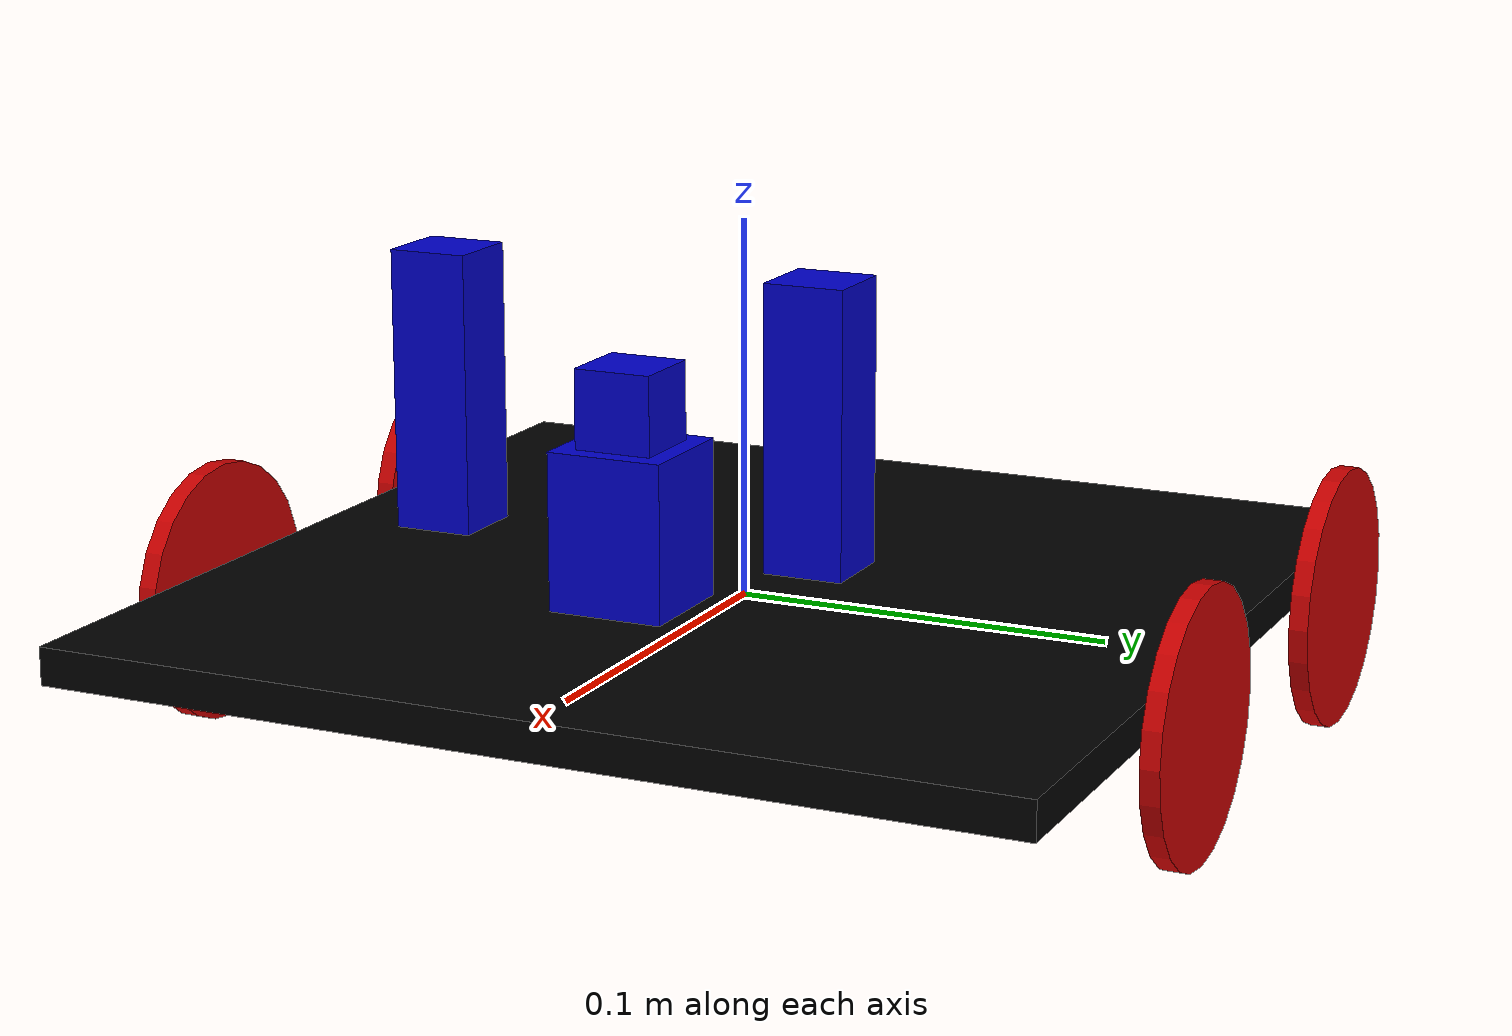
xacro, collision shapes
<?xml version="1.0"?>
<robot xmlns:xacro="http://www.ros.org/wiki/xacro" name="mobile_robot">

  <xacro:property name="base_width" value="0.26"/>
  <xacro:property name="base_len" value="0.26"/>
  <xacro:property name="wheel_radius" value="0.035"/>
  <xacro:property name="base_wheel_gap" value="0.007"/>
  <xacro:property name="wheel_separation" value="0.15"/>
  <xacro:property name="wheel_joint_offset" value="0.04"/>
  <xacro:property name="wheel_joint_offset1" value="-0.08"/>

  <xacro:property name="caster_wheel_radius" value="${wheel_radius/2}"/>
  <xacro:property name="caster_wheel_mass" value="0.001"/>
  <xacro:property name="caster_wheel_joint_offset" value="-0.052"/>

  <xacro:property name="camera_size" value="0.02"/>
  <xacro:property name="camera_origin_x" value="0.065"/>
  <xacro:property name="camera_origin_y" value="0"/>
  <xacro:property name="camera_origin_z" value="0.065"/>

  <xacro:property name="deg_to_rad" value="0.01745329251994329577"/>

  <xacro:property name="M_PI" value="3.14159"/>

  <xacro:include filename="$(find mobile_description)/urdf/sensors/xtion_pro_live.urdf.xacro"/>

  <xacro:include filename="$(find mobile_description)/urdf/mobile_robot_gazebo_plugins.xacro"/>

  <!--Color Properties-->
  <material name="blue">
    <color rgba="0 0 0.8 1"/>
  </material>
  <material name="black">
    <color rgba="0 0 0 1"/>
  </material>
  <material name="white">
    <color rgba="1 1 1 1"/>
  </material>
  <material name="red">
    <color rgba="0.8 0.0 0.0 1.0"/>
  </material>

  <!--Interial macros-->
  <xacro:macro name="cylinder_inertia" params="m r h">
    <inertial>
      <mass value="${m}"/>
      <inertia ixx="${m*(3*r*r+h*h)/12}" ixy = "0" ixz = "0" iyy="${m*(3*r*r+h*h)/12}" iyz = "0" izz="${m*r*r/2}"/>
    </inertial>
  </xacro:macro>

  <xacro:macro name="box_inertia" params="m w h d">
    <inertial>
      <mass value="${m}"/>
      <inertia ixx="${m / 12.0 * (d*d + h*h)}" ixy="0.0" ixz="0.0" iyy="${m / 12.0 * (w*w + h*h)}" iyz="0.0" izz="${m / 12.0 * (w*w + d*d)}"/>
    </inertial>
  </xacro:macro>

  <xacro:macro name="sphere_inertia" params="m r">
    <inertial>
      <mass value="${m}"/>
      <inertia ixx="${2.0*m*(r*r)/5.0}" ixy="0.0" ixz="0.0" iyy="${2.0*m*(r*r)/5.0}" iyz="0.0" izz="${2.0*m*(r*r)/5.0}"/>
    </inertial>
  </xacro:macro>

  <xacro:macro name="default_inertial" params="mass">
    <inertial>
      <mass value="${mass}"/>
      <inertia ixx="1.0" ixy="0.0" ixz="0.0" iyy="1.0" iyz="0.0" izz="1.0"/>
    </inertial>
  </xacro:macro>
  <!--Base Footprint-->

  <!--Base link-->
  <link name="base_link">
    <xacro:box_inertia m="10" w="${base_len}" h="${base_width}" d="0.01"/>
    <visual>
      <geometry>
        <box size="${base_len} ${base_width} 0.05"/>
      </geometry>
      <material name="black"/>
    </visual>
    <collision>
      <geometry>
        <box size="${base_len} ${base_width} 0.01"/>
      </geometry>
    </collision>
  </link>

  <!--base_link to base_footprint Joint-->

  <!--Wheel link1 & joint macro-->
  <xacro:macro name="wheel" params="prefix reflect">
    <link name="${prefix}_wheel">
      <visual>
        <origin xyz="0.0 0 0" rpy="${pi/2} 0 0"/>
        <geometry>
          <cylinder radius="${wheel_radius}" length="0.005"/>
        </geometry>
        <material name="red"/>
      </visual>
      <collision>
        <origin xyz="0 0 0" rpy="${pi/2} 0 0"/>
        <geometry>
          <cylinder radius="${wheel_radius}" length="0.005"/>
        </geometry>
      </collision>
      <xacro:cylinder_inertia m="10" r="${wheel_radius}" h="0.005"/>
    </link>

    <joint name="${prefix}_wheel_joint" type="continuous">
      <axis xyz="0 1 0" rpy="0 0 0" />
      <parent link="base_link"/>
      <child link="${prefix}_wheel"/>
      <origin xyz="${wheel_joint_offset} ${((base_width/2)+base_wheel_gap)*reflect} -0.005" rpy="0 0 0"/>
    </joint>
  </xacro:macro>

  <!--Wheel link2 & joint macro-->
  <xacro:macro name="wheel1" params="prefix reflect">
    <link name="${prefix}_wheel">
      <visual>
        <origin xyz="0 0 0" rpy="${pi/2} 0 0"/>
        <geometry>
          <cylinder radius="${wheel_radius}" length="0.005"/>
        </geometry>
        <material name="red"/>
      </visual>
      <collision>
        <origin xyz="0 0 0" rpy="${pi/2} 0 0"/>
        <geometry>
          <cylinder radius="${wheel_radius}" length="0.005"/>
        </geometry>
      </collision>
      <xacro:cylinder_inertia m="10" r="${wheel_radius}" h="0.005"/>
    </link>

    <joint name="${prefix}_wheel_joint" type="continuous">
      <axis xyz="0 1 0" rpy="0 0 0" />
      <parent link="base_link"/>
      <child link="${prefix}_wheel"/>
      <origin xyz="${wheel_joint_offset1} ${((base_width/2)+base_wheel_gap)*reflect} -0.005" rpy="0 0 0"/>
    </joint>
  </xacro:macro>

  <!--Create Left & Right Wheel links/joints-->
  <xacro:wheel prefix="left" reflect="1"/>
  <xacro:wheel prefix="right" reflect="-1"/>

  <xacro:wheel1 prefix="left1" reflect="1"/>
  <xacro:wheel1 prefix="right1" reflect="-1"/>

  <!--Caster Wheel Link-->
  <link name="caster_wheel">
    <visual>
      <origin xyz="0 0 0" rpy="0 0 0"/>
      <geometry>
        <sphere radius="${caster_wheel_radius}"/>
      </geometry>
      <material name="blue"/>
    </visual>
    <collision>
      <origin xyz="0 0 0" rpy="0 0 0"/>
      <geometry>
        <sphere radius="${caster_wheel_radius}"/>
      </geometry>
    </collision>
    <xacro:sphere_inertia m="10" r="${caster_wheel_radius}"/>
  </link>

  <!--Caster Wheel Joint-->
  <joint name="caster_wheel_joint" type="continuous">
    <axis xyz="0 1 0" rpy="0 0 0" />
    <parent link="base_link"/>
    <child link="caster_wheel"/>
    <origin xyz="${caster_wheel_joint_offset} 0 -${caster_wheel_radius+0.005}" rpy="0 0 0"/>
  </joint>

  <xacro:property name="laser_size_x" value="0.03"/>
  <xacro:property name="laser_size_y" value="0.03"/>
  <xacro:property name="laser_size_z" value="0.04"/>
  <xacro:property name="laser_origin_x" value="0.065"/>
  <xacro:property name="laser_origin_y" value="0"/>
  <xacro:property name="laser_origin_z" value="0.035"/>

  <link name="sensor_laser">
    <visual>
      <geometry>
        <box size="${laser_size_x} ${laser_size_y} ${laser_size_z}"/>
      </geometry>
      <material name="blue"/>
    </visual>
    <collision>
      <geometry>
        <box size="${laser_size_x} ${laser_size_y} ${laser_size_z}"/>
      </geometry>
    </collision>
    <xacro:box_inertia m="0.2" w="${laser_size_x}" h="${laser_size_y}" d="${laser_size_z}"/>
  </link>

  <joint name="sensor_laser_joint" type="fixed">
    <origin xyz="${laser_origin_x} ${laser_origin_y} ${laser_origin_z}" rpy="0 0 0" />
    <parent link="base_link"/>
    <child link="sensor_laser" />
  </joint>

    <!--Camera-->
  <link name="camera">
    <visual>
      <geometry>
        <box size="${camera_size} ${camera_size} ${camera_size}"/>
      </geometry>
      <material name="blue"/>
    </visual>
    <collision>
      <geometry>
        <box size="${camera_size} ${camera_size} ${camera_size}"/>
      </geometry>
    </collision>
    <xacro:default_inertial mass="0.02"/>
  </link>

  <joint name="camera_joint" type="fixed">
    <origin xyz="${camera_origin_x} ${camera_origin_y} ${camera_origin_z}" rpy="0 0 0"/>
    <parent link="base_link"/>
    <child link="camera"/>
  </joint>

    <!--Depth Camera-->
    <!--Light 1-->
  <link name="light1_link">
    <visual>
      <geometry>
        <box size="${camera_size} ${camera_size} ${camera_size+0.05}"/>
      </geometry>
      <material name="blue"/>
    </visual>
    <collision>
      <geometry>
        <box size="${camera_size} ${camera_size} ${camera_size+0.05}"/>
      </geometry>
    </collision>
    <xacro:default_inertial mass="0.02"/>

  </link>

  <joint name="light1_joint" type="fixed">
    <origin xyz="${camera_origin_x} ${camera_origin_y+0.05} ${camera_origin_z}" rpy="0 0 0"/>
    <parent link="base_link"/>
    <child link="light1_link"/>
  </joint>

    <!--Light 2-->
  <link name="light2_link">
    <visual>
      <geometry>
        <box size="${camera_size} ${camera_size} ${camera_size+0.05}"/>
      </geometry>
      <material name="blue"/>
    </visual>
    <collision>
      <geometry>
        <box size="${camera_size} ${camera_size} ${camera_size+0.05}"/>
      </geometry>
    </collision>
    <xacro:default_inertial mass="0.02"/>

  </link>

  <joint name="light2_joint" type="fixed">
    <origin xyz="${camera_origin_x} ${camera_origin_y-0.05} ${camera_origin_z}" rpy="0 0 1.57"/>
    <parent link="base_link"/>
    <child link="light2_link"/>
  </joint>

  <xacro:xtion_pro_live name="rgbd_camera" parent="base">
    <origin xyz="0 0.0 0.2" rpy="0 ${0.0 * deg_to_rad} 0"/>
    <origin xyz="0 0 0" rpy="${-90.0 * deg_to_rad} 0 ${-90.0 * deg_to_rad}"/>
  </xacro:xtion_pro_live>

</robot>

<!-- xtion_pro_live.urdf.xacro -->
<robot xmlns:xacro="http://www.ros.org/wiki/xacro" name="mobile_robot">

  <xacro:include filename="$(find mobile_description)/urdf/sensors/xtion_pro_live.gazebo.xacro"/>

  <xacro:macro name="dummy_inertial">
    <inertial>
      <origin xyz="0 0 0" rpy="0 0 0"/>
      <mass value="0.001"/>
      <inertia ixx="0.00001" ixy="0" ixz="0"
               iyy="0.00001" iyz="0"
               izz="0.00001"/>
    </inertial>
  </xacro:macro>

  <xacro:macro name="xtion_pro_live" params="name parent *origin *optical_origin">

    <!-- frames in the center of the camera -->
    <joint name="${name}_joint" type="fixed">
      <xacro:insert_block name="origin"/>
      <parent link="${parent}_link"/>
      <child link="${name}_link"/>
    </joint>

    <link name="${name}_link">
      <inertial>
        <origin xyz="-0.00936000000 -0.00003000000 -0.00273000000" rpy="0 0 0"/>
        <mass value="0.21970000000"/>
        <inertia ixx="0.00000429247" ixy="0.00000000000" ixz="0.00000002565"
                 iyy="0.00000008027" iyz="0.00000000000"
                 izz="0.00000427339"/>
      </inertial>
      <visual>
        <origin xyz="0 0 0" rpy="0 0 0"/>
        <geometry>
          <mesh filename="package://mobile_description/meshes/sensors/xtion_pro_live/xtion_pro_live.dae"/>
        </geometry>
        <material name="DarkGrey"/>
      </visual>
    </link>

    <joint name="${name}_optical_joint" type="fixed">
      <xacro:insert_block name="optical_origin"/>
      <parent link="${name}_link"/>
      <child link="${name}_optical_frame"/>
    </joint>

    <link name="${name}_optical_frame">
      <dummy_inertial/>
    </link>

    <!-- Depth sensor frames -->
    <joint name="${name}_depth_joint" type="fixed">
      <origin xyz="0.0 0.049 0.0" rpy="0 0 0"/>
      <parent link="${name}_link"/>
      <child link="${name}_depth_frame"/>
    </joint>

    <link name="${name}_depth_frame">
      <dummy_inertial/>
    </link>

    <joint name="${name}_depth_optical_joint" type="fixed">
      <origin xyz="0 0 0" rpy="${-90.0 * deg_to_rad} 0.0 ${-90.0 * deg_to_rad}"/>
      <parent link="${name}_depth_frame"/>
      <child link="${name}_depth_optical_frame"/>
    </joint>

    <link name="${name}_depth_optical_frame">
      <dummy_inertial/>
    </link>

    <!-- RGB sensor frames -->
    <joint name="${name}_rgb_joint" type="fixed">
      <origin xyz="0.0 0.022 0.0" rpy="0 0 0"/>
      <parent link="${name}_link"/>
      <child link="${name}_rgb_frame"/>
    </joint>

    <link name="${name}_rgb_frame">
      <dummy_inertial/>
    </link>

    <joint name="${name}_rgb_optical_joint" type="fixed">
      <origin xyz="0 0 0" rpy="${-90.0 * deg_to_rad} 0.0 ${-90.0 * deg_to_rad}"/>
      <parent link="${name}_rgb_frame"/>
      <child link="${name}_rgb_optical_frame"/>
    </joint>

    <link name="${name}_rgb_optical_frame">
      <dummy_inertial/>
    </link>

    <xacro:xtion_pro_live_rgbd_camera_gazebo name="${name}"/>
  </xacro:macro>

</robot>
